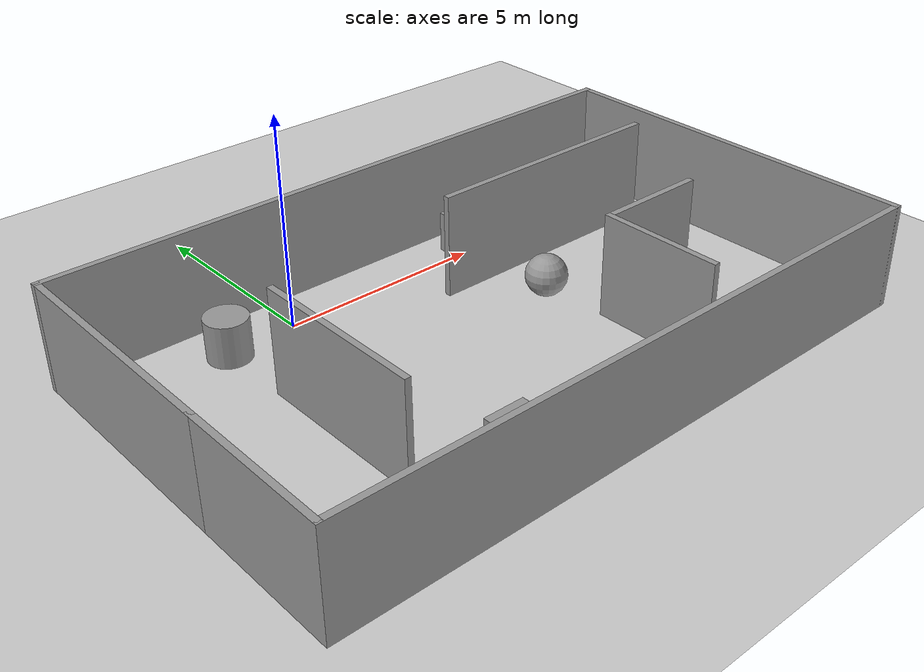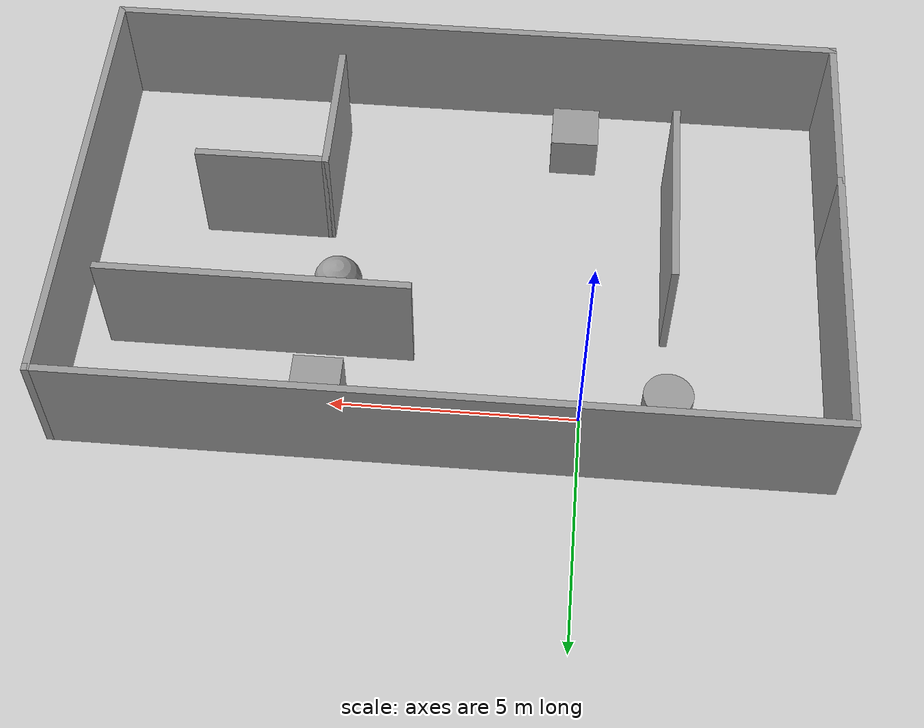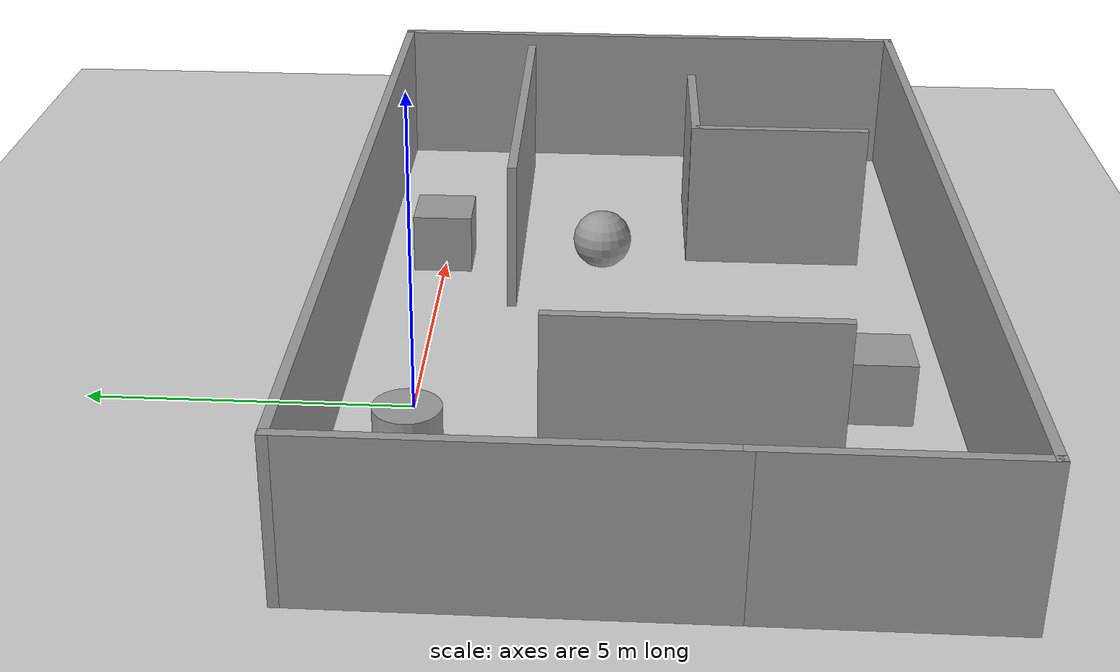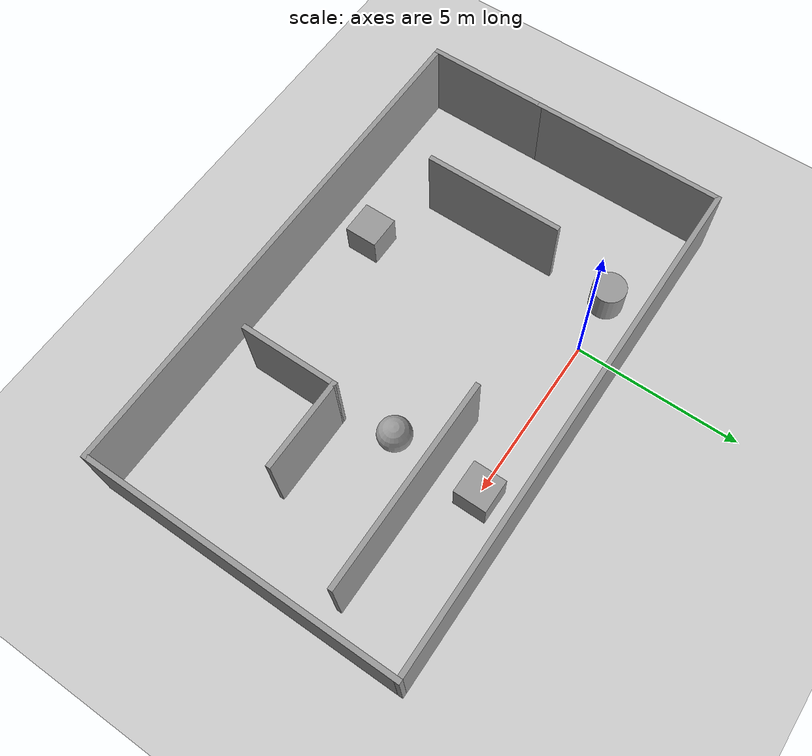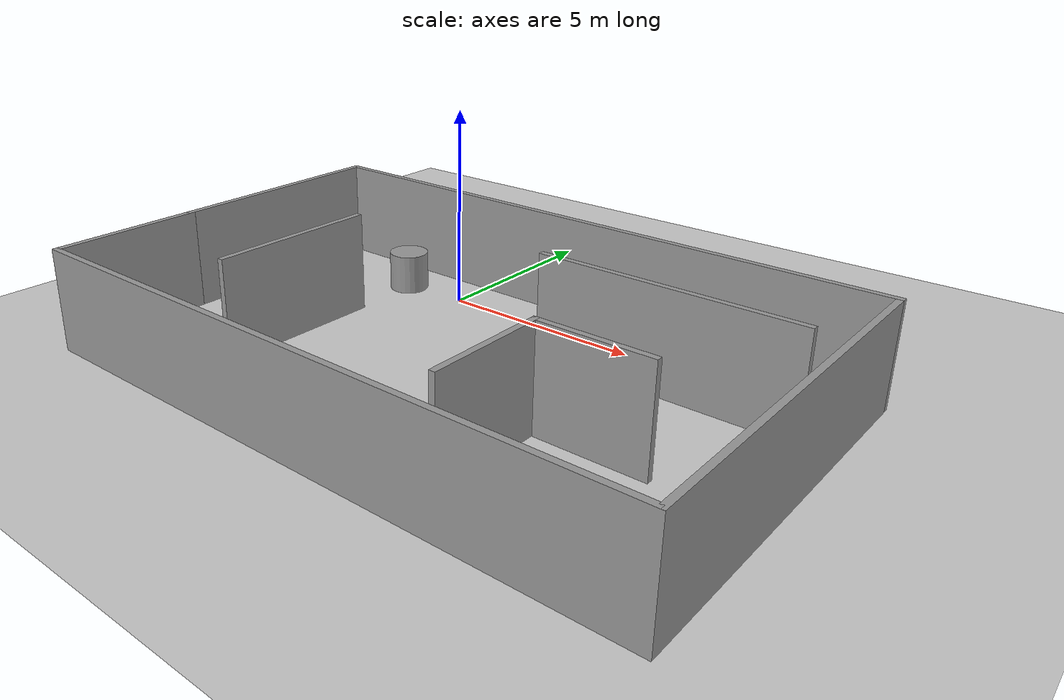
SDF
<sdf version="1.7">
 <world name="default">
  <light name="sun" type="directional">
   <pose>0 0 10 0 -0 0</pose>
   <diffuse>0.8 0.8 0.8 1</diffuse>
   <specular>0.2 0.2 0.2 1</specular>
   <attenuation>
    <range>1000</range>
    <constant>0.9</constant>
    <linear>0.01</linear>
    <quadratic>0.001</quadratic>
   </attenuation>
   <direction>-0.5 0.1 -0.9</direction>
   <spot><inner_angle>0</inner_angle><outer_angle>0</outer_angle><falloff>0</falloff></spot>
  </light>
  <model name="ground_plane">
   <static>1</static>
   <link name="link">
    <collision name="collision">
     <geometry><plane><normal>0 0 1</normal><size>100 100</size></plane></geometry>
     <surface>
      <contact><collide_bitmask>65535</collide_bitmask></contact>
      <friction><ode><mu>100</mu><mu2>50</mu2></ode></friction>
     </surface>
    </collision>
    <visual name="visual">
     <cast_shadows>0</cast_shadows>
     <geometry><plane><normal>0 0 1</normal><size>100 100</size></plane></geometry>
     <material>
      <script><uri>file://media/materials/scripts/gazebo.material</uri><name>Gazebo/Grey</name></script>
     </material>
    </visual>
   </link>
  </model>
  <gravity>0 0 -9.8</gravity>
  <magnetic_field>6e-06 2.3e-05 -4.2e-05</magnetic_field>
  <atmosphere type="adiabatic"/>
  <physics type="ode">
   <max_step_size>0.001</max_step_size>
   <real_time_factor>1</real_time_factor>
   <real_time_update_rate>1000</real_time_update_rate>
  </physics>
  <scene><ambient>0.4 0.4 0.4 1</ambient><background>0.7 0.7 0.7 1</background><shadows>1</shadows></scene>
  <spherical_coordinates>
   <surface_model>EARTH_WGS84</surface_model>
   <latitude_deg>0</latitude_deg>
   <longitude_deg>0</longitude_deg>
   <elevation>0</elevation>
   <heading_deg>0</heading_deg>
  </spherical_coordinates>
  <model name="stan">
   <pose>2.72187 -3.48309 0 0 -0 0</pose>
   <link name="Wall_10">
    <collision name="Wall_10_Collision">
     <geometry><box><size>6.25 0.15 2.5</size></box></geometry>
     <pose>0 0 1.25 0 -0 0</pose>
    </collision>
    <visual name="Wall_10_Visual">
     <pose>0 0 1.25 0 -0 0</pose>
     <geometry><box><size>6.25 0.15 2.5</size></box></geometry>
     <material>
      <script><uri>file://media/materials/scripts/gazebo.material</uri><name>Gazebo/Grey</name></script>
      <ambient>1 1 1 1</ambient>
     </material>
     <meta><layer>0</layer></meta>
    </visual>
    <pose>3.8179 2.2318 0 0 -0 0</pose>
   </link>
   <link name="Wall_12">
    <collision name="Wall_12_Collision">
     <geometry><box><size>3 0.15 2.5</size></box></geometry>
     <pose>0 0 1.25 0 -0 0</pose>
    </collision>
    <visual name="Wall_12_Visual">
     <pose>0 0 1.25 0 -0 0</pose>
     <geometry><box><size>3 0.15 2.5</size></box></geometry>
     <material>
      <script><uri>file://media/materials/scripts/gazebo.material</uri><name>Gazebo/Grey</name></script>
      <ambient>1 1 1 1</ambient>
     </material>
     <meta><layer>0</layer></meta>
    </visual>
    <pose>2.73791 -2.21805 0 0 -0 1.5708</pose>
   </link>
   <link name="Wall_13">
    <collision name="Wall_13_Collision">
     <geometry><box><size>2.75 0.15 2.5</size></box></geometry>
     <pose>0 0 1.25 0 -0 0</pose>
    </collision>
    <visual name="Wall_13_Visual">
     <pose>0 0 1.25 0 -0 0</pose>
     <geometry><box><size>2.75 0.15 2.5</size></box></geometry>
     <material>
      <script><uri>file://media/materials/scripts/gazebo.material</uri><name>Gazebo/Grey</name></script>
      <ambient>1 1 1 1</ambient>
     </material>
     <meta><layer>0</layer></meta>
    </visual>
    <pose>4.03791 -0.79305 0 0 -0 0</pose>
   </link>
   <link name="Wall_2">
    <collision name="Wall_2_Collision">
     <geometry><box><size>3.75 0.15 2.5</size></box></geometry>
     <pose>0 0 1.25 0 -0 0</pose>
    </collision>
    <visual name="Wall_2_Visual">
     <pose>0 0 1.25 0 -0 0</pose>
     <geometry><box><size>3.75 0.15 2.5</size></box></geometry>
     <material>
      <script><uri>file://media/materials/scripts/gazebo.material</uri><name>Gazebo/Grey</name></script>
      <ambient>1 1 1 1</ambient>
     </material>
     <meta><layer>0</layer></meta>
    </visual>
    <pose>-7.675 -2.875 0 0 -0 -1.5708</pose>
   </link>
   <link name="Wall_3">
    <collision name="Wall_3_Collision">
     <geometry><box><size>15.5 0.15 2.5</size></box></geometry>
     <pose>0 0 1.25 0 -0 0</pose>
    </collision>
    <visual name="Wall_3_Visual">
     <pose>0 0 1.25 0 -0 0</pose>
     <geometry><box><size>15.5 0.15 2.5</size></box></geometry>
     <material>
      <script><uri>file://media/materials/scripts/gazebo.material</uri><name>Gazebo/Grey</name></script>
      <ambient>1 1 1 1</ambient>
     </material>
     <meta><layer>0</layer></meta>
    </visual>
    <pose>-0 -4.675 0 0 -0 0</pose>
   </link>
   <link name="Wall_4">
    <collision name="Wall_4_Collision">
     <geometry><box><size>9.5 0.15 2.5</size></box></geometry>
     <pose>0 0 1.25 0 -0 0</pose>
    </collision>
    <visual name="Wall_4_Visual">
     <pose>0 0 1.25 0 -0 0</pose>
     <geometry><box><size>9.5 0.15 2.5</size></box></geometry>
     <material>
      <script><uri>file://media/materials/scripts/gazebo.material</uri><name>Gazebo/Grey</name></script>
      <ambient>1 1 1 1</ambient>
     </material>
     <meta><layer>0</layer></meta>
    </visual>
    <pose>7.675 0 0 0 -0 1.5708</pose>
   </link>
   <link name="Wall_5">
    <collision name="Wall_5_Collision">
     <geometry><box><size>15.5 0.15 2.5</size></box></geometry>
     <pose>0 0 1.25 0 -0 0</pose>
    </collision>
    <visual name="Wall_5_Visual">
     <pose>0 0 1.25 0 -0 0</pose>
     <geometry><box><size>15.5 0.15 2.5</size></box></geometry>
     <material>
      <script><uri>file://media/materials/scripts/gazebo.material</uri><name>Gazebo/Grey</name></script>
      <ambient>1 1 1 1</ambient>
     </material>
     <meta><layer>0</layer></meta>
    </visual>
    <pose>-0 4.675 0 0 -0 3.14159</pose>
   </link>
   <link name="Wall_6">
    <collision name="Wall_6_Collision">
     <geometry><box><size>5.9 0.15 2.5</size></box></geometry>
     <pose>0 0 1.25 0 -0 0</pose>
    </collision>
    <visual name="Wall_6_Visual">
     <pose>0 0 1.25 0 -0 0</pose>
     <geometry><box><size>5.9 0.15 2.5</size></box></geometry>
     <material>
      <script><uri>file://media/materials/scripts/gazebo.material</uri><name>Gazebo/Grey</name></script>
      <ambient>1 1 1 1</ambient>
     </material>
     <meta><layer>0</layer></meta>
    </visual>
    <pose>-7.675 1.8 0 0 -0 -1.5708</pose>
   </link>
   <link name="Wall_8">
    <collision name="Wall_8_Collision">
     <geometry><box><size>4.25 0.15 2.5</size></box></geometry>
     <pose>0 0 1.25 0 -0 0</pose>
    </collision>
    <visual name="Wall_8_Visual">
     <pose>0 0 1.25 0 -0 0</pose>
     <geometry><box><size>4.25 0.15 2.5</size></box></geometry>
     <material>
      <script><uri>file://media/materials/scripts/gazebo.material</uri><name>Gazebo/Grey</name></script>
      <ambient>1 1 1 1</ambient>
     </material>
     <meta><layer>0</layer></meta>
    </visual>
    <pose>-4.3682 -0.572865 0 0 -0 1.5708</pose>
   </link>
   <static>1</static>
  </model>
  <model name="unit_cylinder">
   <pose>-1.68726 -0.111281 0.499993 -3e-06 -3e-06 0</pose>
   <link name="link">
    <inertial>
     <mass>1</mass>
     <inertia><ixx>0.145833</ixx><ixy>0</ixy><ixz>0</ixz><iyy>0.145833</iyy><iyz>0</iyz><izz>0.125</izz></inertia>
    </inertial>
    <collision name="collision">
     <geometry><cylinder><radius>0.5</radius><length>1</length></cylinder></geometry>
    </collision>
    <visual name="visual">
     <geometry><cylinder><radius>0.5</radius><length>1</length></cylinder></geometry>
     <material>
      <script><name>Gazebo/Grey</name><uri>file://media/materials/scripts/gazebo.material</uri></script>
     </material>
    </visual>
   </link>
  </model>
  <model name="unit_sphere">
   <pose>5.12865 -2.72715 0.5 0 -0 0</pose>
   <link name="link">
    <inertial>
     <mass>1</mass>
     <inertia><ixx>0.1</ixx><ixy>0</ixy><ixz>0</ixz><iyy>0.1</iyy><iyz>0</iyz><izz>0.1</izz></inertia>
    </inertial>
    <collision name="collision"><geometry><sphere><radius>0.5</radius></sphere></geometry></collision>
    <visual name="visual">
     <geometry><sphere><radius>0.5</radius></sphere></geometry>
     <material>
      <script><name>Gazebo/Grey</name><uri>file://media/materials/scripts/gazebo.material</uri></script>
     </material>
    </visual>
   </link>
  </model>
  <model name="unit_box">
   <pose>0.400952 -6.89295 0.499995 -1e-05 -0 0</pose>
   <link name="link">
    <inertial>
     <mass>1</mass>
     <inertia>
      <ixx>0.166667</ixx>
      <ixy>0</ixy>
      <ixz>0</ixz>
      <iyy>0.166667</iyy>
      <iyz>0</iyz>
      <izz>0.166667</izz>
     </inertia>
    </inertial>
    <collision name="collision"><geometry><box><size>1 1 1</size></box></geometry></collision>
    <visual name="visual">
     <geometry><box><size>1 1 1</size></box></geometry>
     <material>
      <script><name>Gazebo/Grey</name><uri>file://media/materials/scripts/gazebo.material</uri></script>
     </material>
    </visual>
   </link>
  </model>
  <model name="unit_box_0">
   <pose>5.21738 0.033952 0.5 0 -0 0</pose>
   <link name="link">
    <inertial>
     <mass>1</mass>
     <inertia>
      <ixx>0.166667</ixx>
      <ixy>0</ixy>
      <ixz>0</ixz>
      <iyy>0.166667</iyy>
      <iyz>0</iyz>
      <izz>0.166667</izz>
     </inertia>
    </inertial>
    <collision name="collision"><geometry><box><size>1 1 1</size></box></geometry></collision>
    <visual name="visual">
     <geometry><box><size>1 1 1</size></box></geometry>
     <material>
      <script><name>Gazebo/Grey</name><uri>file://media/materials/scripts/gazebo.material</uri></script>
     </material>
    </visual>
   </link>
  </model>
 </world>
</sdf>
